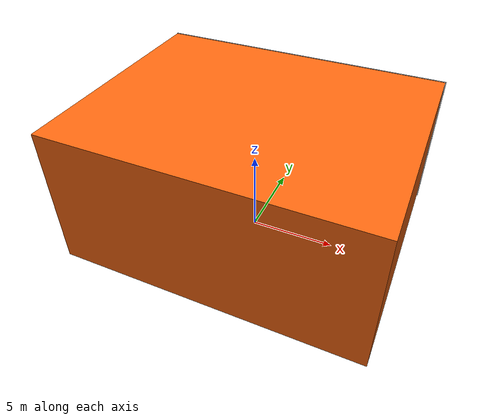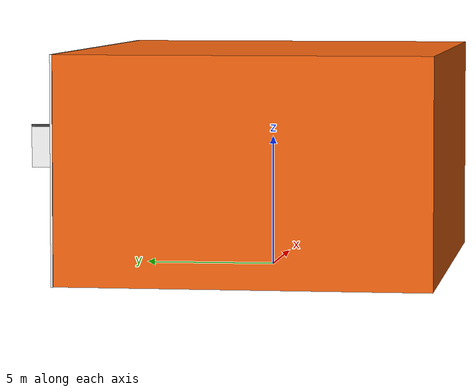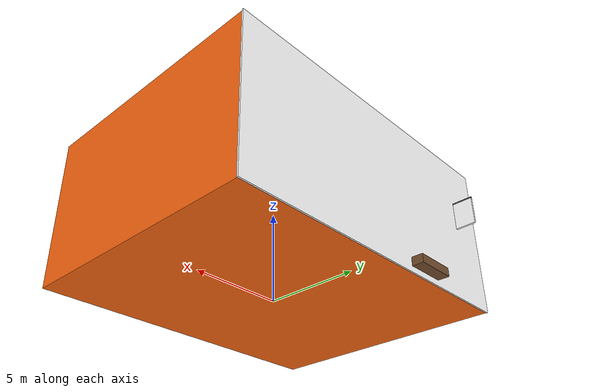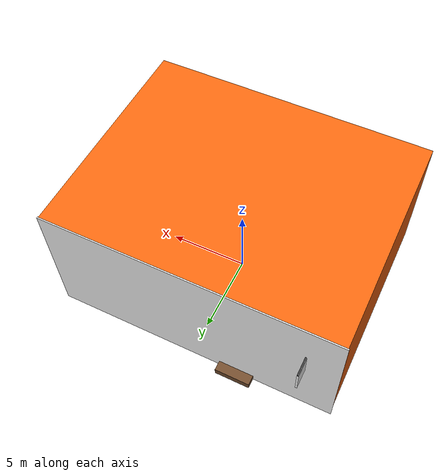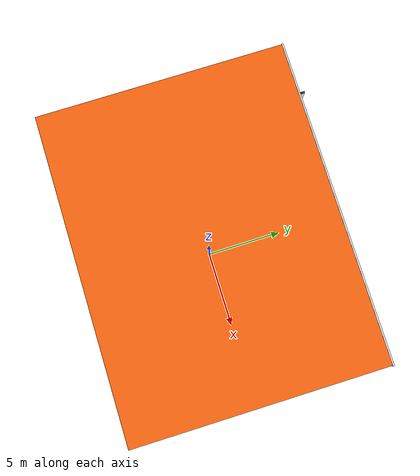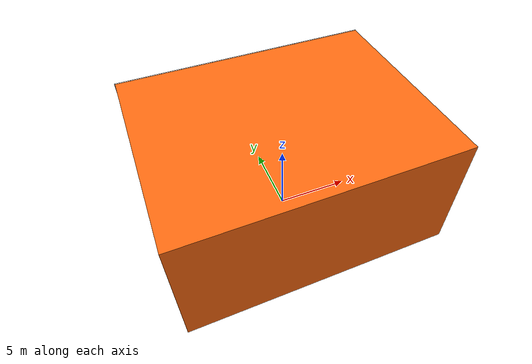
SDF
<?xml version="1.0" ?>
<sdf version="1.8">
  <model name="cosmed_store">
    <static>true</static>
    <link name="cosmed_link">

      <!-- Collision -->
      <collision name="cosmed_main_col">
        <pose>0 0 4.25 0 0 0</pose>
        <geometry>
          <box><size>18.0 14.0 8.5</size></box>
        </geometry>
      </collision>

      <!-- Main Building Body (Warm orange masonry) -->
      <visual name="cosmed_body_vis">
        <pose>0 0 4.25 0 0 0</pose>
        <geometry>
          <box><size>17.9 13.9 8.48</size></box>
        </geometry>
        <material>
          <ambient>0.92 0.36 0.05 1</ambient>
          <diffuse>0.98 0.40 0.06 1</diffuse>
          <pbr>
            <metal>
              <roughness>0.5</roughness>
              <metalness>0.05</metalness>
            </metal>
          </pbr>
        </material>
      </visual>

      <!-- Front Photo-Real Facade (X: 18m, Z: 8.5m - 3 Arched Windows, Cross Logo, Pharmacy Front) -->
      <visual name="cosmed_facade_vis">
        <pose>0 6.96 4.25 0 0 0</pose>
        <geometry>
          <box><size>18.0 0.08 8.5</size></box>
        </geometry>
        <material>
          <diffuse>1 1 1 1</diffuse>
          <pbr>
            <metal>
              <albedo_map>model://cosmed_store/materials/textures/cosmed_facade.png</albedo_map>
              <roughness>0.35</roughness>
              <metalness>0.1</metalness>
            </metal>
          </pbr>
        </material>
      </visual>

      <!-- 側懸亮橘色十字招牌 (Protruding Cross Sign) -->
      <visual name="cosmed_sign_arm">
        <pose>-7.0 7.5 5.8 0 0 0</pose>
        <geometry>
          <box><size>0.08 1.2 0.08</size></box>
        </geometry>
        <material>
          <ambient>0.2 0.2 0.2 1</ambient>
          <diffuse>0.25 0.25 0.25 1</diffuse>
        </material>
      </visual>
      <visual name="cosmed_protruding_sign">
        <pose>-7.0 7.5 5.0 0 0 0</pose>
        <geometry>
          <box><size>0.12 1.2 1.5</size></box>
        </geometry>
        <material>
          <diffuse>1 1 1 1</diffuse>
          <pbr>
            <metal>
              <albedo_map>model://cosmed_store/materials/textures/cosmed_protruding_sign.png</albedo_map>
              <roughness>0.3</roughness>
              <metalness>0.1</metalness>
            </metal>
          </pbr>
        </material>
      </visual>

      <!-- 門前行人休憩長椅 (Pedestrian Waiting Bench) -->
      <visual name="cosmed_bench">
        <pose>-3.0 7.4 0.45 0 0 0</pose>
        <geometry>
          <box><size>2.2 0.6 0.45</size></box>
        </geometry>
        <material>
          <ambient>0.38 0.24 0.15 1</ambient>
          <diffuse>0.45 0.3 0.18 1</diffuse>
        </material>
      </visual>

    </link>
  </model>
</sdf>
